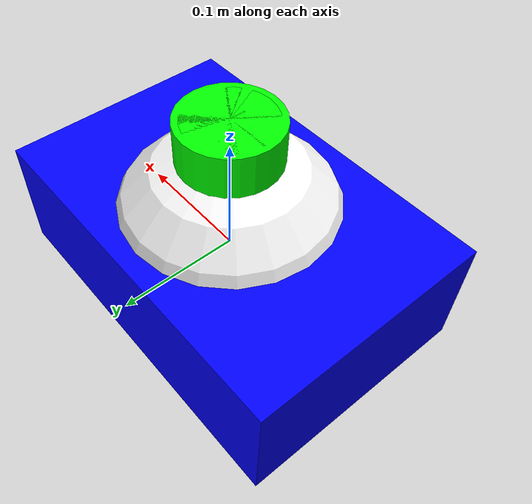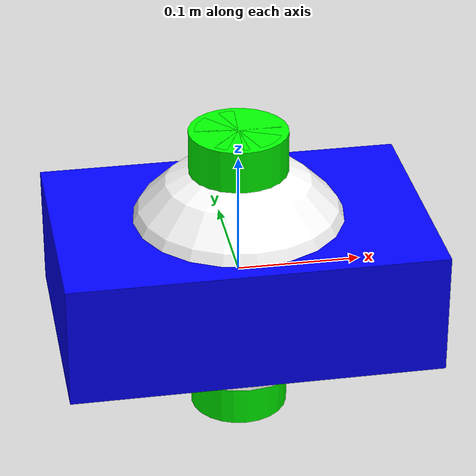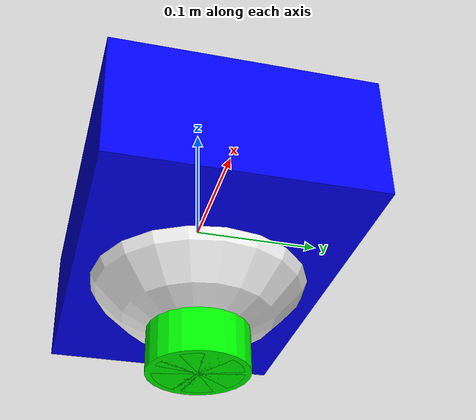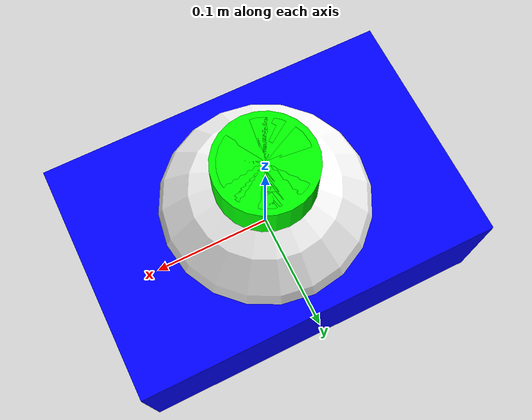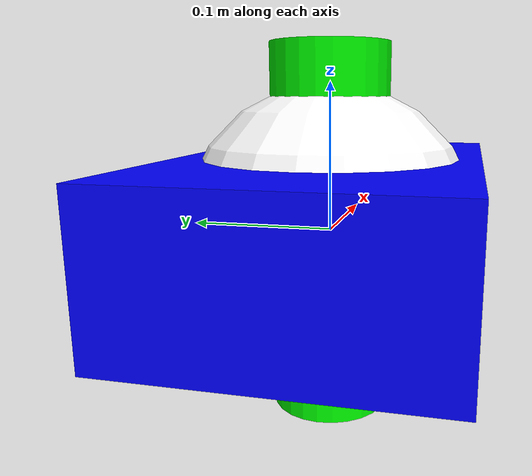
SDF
<?xml version="1.0" ?>
<sdf version="1.7">
  <model name="simple_humanoid">
    <!-- Base Link -->
    <link name="base_link">
      <visual name="base_visual">
        <geometry>
          <box>
            <size>0.3 0.2 0.1</size>
          </box>
        </geometry>
        <material>
          <ambient>0 0 1 1</ambient>
          <diffuse>0 0 1 1</diffuse>
        </material>
      </visual>
      <collision name="base_collision">
        <geometry>
          <box>
            <size>0.3 0.2 0.1</size>
          </box>
        </geometry>
      </collision>
      <inertial>
        <mass>5.0</mass>
        <inertia>
          <ixx>0.1</ixx>
          <ixy>0.0</ixy>
          <ixz>0.0</ixz>
          <iyy>0.1</iyy>
          <iyz>0.0</iyz>
          <izz>0.1</izz>
        </inertia>
      </inertial>
    </link>

    <!-- Head -->
    <link name="head">
      <visual name="head_visual">
        <geometry>
          <sphere>
            <radius>0.1</radius>
          </sphere>
        </geometry>
        <material>
          <ambient>1 1 1 1</ambient>
          <diffuse>1 1 1 1</diffuse>
        </material>
      </visual>
      <collision name="head_collision">
        <geometry>
          <sphere>
            <radius>0.1</radius>
          </sphere>
        </geometry>
      </collision>
      <inertial>
        <mass>1.0</mass>
        <inertia>
          <ixx>0.001</ixx>
          <ixy>0.0</ixy>
          <ixz>0.0</ixz>
          <iyy>0.001</iyy>
          <iyz>0.0</iyz>
          <izz>0.001</izz>
        </inertia>
      </inertial>
    </link>

    <joint name="head_joint" type="fixed">
      <parent>base_link</parent>
      <child>head</child>
      <pose>0 0 0.15 0 0 0</pose>
    </joint>

    <!-- Left Arm -->
    <link name="left_upper_arm">
      <visual name="left_upper_arm_visual">
        <geometry>
          <cylinder>
            <length>0.2</length>
            <radius>0.03</radius>
          </cylinder>
        </geometry>
        <material>
          <ambient>1 0 0 1</ambient>
          <diffuse>1 0 0 1</diffuse>
        </material>
      </visual>
      <collision name="left_upper_arm_collision">
        <geometry>
          <cylinder>
            <length>0.2</length>
            <radius>0.03</radius>
          </cylinder>
        </geometry>
      </collision>
      <inertial>
        <mass>0.5</mass>
        <inertia>
          <ixx>0.001</ixx>
          <ixy>0.0</ixy>
          <ixz>0.0</ixz>
          <iyy>0.001</iyy>
          <iyz>0.0</iyz>
          <izz>0.001</izz>
        </inertia>
      </inertial>
    </link>

    <joint name="left_shoulder_joint" type="revolute">
      <parent>base_link</parent>
      <child>left_upper_arm</child>
      <pose>0.18 0.1 0 0 0 0</pose>
      <axis>
        <xyz>0 1 0</xyz>
        <limit>
          <lower>-1.57</lower>
          <upper>1.57</upper>
        </limit>
      </axis>
    </joint>

    <link name="left_lower_arm">
      <visual name="left_lower_arm_visual">
        <geometry>
          <cylinder>
            <length>0.15</length>
            <radius>0.025</radius>
          </cylinder>
        </geometry>
        <material>
          <ambient>1 0 0 1</ambient>
          <diffuse>1 0 0 1</diffuse>
        </material>
      </visual>
      <collision name="left_lower_arm_collision">
        <geometry>
          <cylinder>
            <length>0.15</length>
            <radius>0.025</radius>
          </cylinder>
        </geometry>
      </collision>
      <inertial>
        <mass>0.3</mass>
        <inertia>
          <ixx>0.001</ixx>
          <ixy>0.0</ixy>
          <ixz>0.0</ixz>
          <iyy>0.001</iyy>
          <iyz>0.0</iyz>
          <izz>0.001</izz>
        </inertia>
      </inertial>
    </link>

    <joint name="left_elbow_joint" type="revolute">
      <parent>left_upper_arm</parent>
      <child>left_lower_arm</child>
      <pose>0 0 -0.175 0 0 0</pose>
      <axis>
        <xyz>0 1 0</xyz>
        <limit>
          <lower>-1.57</lower>
          <upper>1.57</upper>
        </limit>
      </axis>
    </joint>

    <!-- Right Arm -->
    <link name="right_upper_arm">
      <visual name="right_upper_arm_visual">
        <geometry>
          <cylinder>
            <length>0.2</length>
            <radius>0.03</radius>
          </cylinder>
        </geometry>
        <material>
          <ambient>1 0 0 1</ambient>
          <diffuse>1 0 0 1</diffuse>
        </material>
      </visual>
      <collision name="right_upper_arm_collision">
        <geometry>
          <cylinder>
            <length>0.2</length>
            <radius>0.03</radius>
          </cylinder>
        </geometry>
      </collision>
      <inertial>
        <mass>0.5</mass>
        <inertia>
          <ixx>0.001</ixx>
          <ixy>0.0</ixy>
          <ixz>0.0</ixz>
          <iyy>0.001</iyy>
          <iyz>0.0</iyz>
          <izz>0.001</izz>
        </inertia>
      </inertial>
    </link>

    <joint name="right_shoulder_joint" type="revolute">
      <parent>base_link</parent>
      <child>right_upper_arm</child>
      <pose>0.18 -0.1 0 0 0 0</pose>
      <axis>
        <xyz>0 1 0</xyz>
        <limit>
          <lower>-1.57</lower>
          <upper>1.57</upper>
        </limit>
      </axis>
    </joint>

    <link name="right_lower_arm">
      <visual name="right_lower_arm_visual">
        <geometry>
          <cylinder>
            <length>0.15</length>
            <radius>0.025</radius>
          </cylinder>
        </geometry>
        <material>
          <ambient>1 0 0 1</ambient>
          <diffuse>1 0 0 1</diffuse>
        </material>
      </visual>
      <collision name="right_lower_arm_collision">
        <geometry>
          <cylinder>
            <length>0.15</length>
            <radius>0.025</radius>
          </cylinder>
        </geometry>
      </collision>
      <inertial>
        <mass>0.3</mass>
        <inertia>
          <ixx>0.001</ixx>
          <ixy>0.0</ixy>
          <ixz>0.0</ixz>
          <iyy>0.001</iyy>
          <iyz>0.0</iyz>
          <izz>0.001</izz>
        </inertia>
      </inertial>
    </link>

    <joint name="right_elbow_joint" type="revolute">
      <parent>right_upper_arm</parent>
      <child>right_lower_arm</child>
      <pose>0 0 -0.175 0 0 0</pose>
      <axis>
        <xyz>0 1 0</xyz>
        <limit>
          <lower>-1.57</lower>
          <upper>1.57</upper>
        </limit>
      </axis>
    </joint>

    <!-- Left Leg -->
    <link name="left_upper_leg">
      <visual name="left_upper_leg_visual">
        <geometry>
          <cylinder>
            <length>0.25</length>
            <radius>0.04</radius>
          </cylinder>
        </geometry>
        <material>
          <ambient>0 1 0 1</ambient>
          <diffuse>0 1 0 1</diffuse>
        </material>
      </visual>
      <collision name="left_upper_leg_collision">
        <geometry>
          <cylinder>
            <length>0.25</length>
            <radius>0.04</radius>
          </cylinder>
        </geometry>
      </collision>
      <inertial>
        <mass>0.8</mass>
        <inertia>
          <ixx>0.002</ixx>
          <ixy>0.0</ixy>
          <ixz>0.0</ixz>
          <iyy>0.002</iyy>
          <iyz>0.0</iyz>
          <izz>0.002</izz>
        </inertia>
      </inertial>
    </link>

    <joint name="left_hip_joint" type="revolute">
      <parent>base_link</parent>
      <child>left_upper_leg</child>
      <pose>-0.1 -0.05 -0.05 0 0 0</pose>
      <axis>
        <xyz>0 1 0</xyz>
        <limit>
          <lower>-1.57</lower>
          <upper>1.57</upper>
        </limit>
      </axis>
    </joint>

    <link name="left_lower_leg">
      <visual name="left_lower_leg_visual">
        <geometry>
          <cylinder>
            <length>0.25</length>
            <radius>0.035</radius>
          </cylinder>
        </geometry>
        <material>
          <ambient>0 1 0 1</ambient>
          <diffuse>0 1 0 1</diffuse>
        </material>
      </visual>
      <collision name="left_lower_leg_collision">
        <geometry>
          <cylinder>
            <length>0.25</length>
            <radius>0.035</radius>
          </cylinder>
        </geometry>
      </collision>
      <inertial>
        <mass>0.6</mass>
        <inertia>
          <ixx>0.002</ixx>
          <ixy>0.0</ixy>
          <ixz>0.0</ixz>
          <iyy>0.002</iyy>
          <iyz>0.0</iyz>
          <izz>0.002</izz>
        </inertia>
      </inertial>
    </link>

    <joint name="left_knee_joint" type="revolute">
      <parent>left_upper_leg</parent>
      <child>left_lower_leg</child>
      <pose>0 0 -0.2 0 0 0</pose>
      <axis>
        <xyz>0 1 0</xyz>
        <limit>
          <lower>-1.57</lower>
          <upper>1.57</upper>
        </limit>
      </axis>
    </joint>

    <!-- Right Leg -->
    <link name="right_upper_leg">
      <visual name="right_upper_leg_visual">
        <geometry>
          <cylinder>
            <length>0.25</length>
            <radius>0.04</radius>
          </cylinder>
        </geometry>
        <material>
          <ambient>0 1 0 1</ambient>
          <diffuse>0 1 0 1</diffuse>
        </material>
      </visual>
      <collision name="right_upper_leg_collision">
        <geometry>
          <cylinder>
            <length>0.25</length>
            <radius>0.04</radius>
          </cylinder>
        </geometry>
      </collision>
      <inertial>
        <mass>0.8</mass>
        <inertia>
          <ixx>0.002</ixx>
          <ixy>0.0</ixy>
          <ixz>0.0</ixz>
          <iyy>0.002</iyy>
          <iyz>0.0</iyz>
          <izz>0.002</izz>
        </inertia>
      </inertial>
    </link>

    <joint name="right_hip_joint" type="revolute">
      <parent>base_link</parent>
      <child>right_upper_leg</child>
      <pose>-0.1 0.05 -0.05 0 0 0</pose>
      <axis>
        <xyz>0 1 0</xyz>
        <limit>
          <lower>-1.57</lower>
          <upper>1.57</upper>
        </limit>
      </axis>
    </joint>

    <link name="right_lower_leg">
      <visual name="right_lower_leg_visual">
        <geometry>
          <cylinder>
            <length>0.25</length>
            <radius>0.035</radius>
          </cylinder>
        </geometry>
        <material>
          <ambient>0 1 0 1</ambient>
          <diffuse>0 1 0 1</diffuse>
        </material>
      </visual>
      <collision name="right_lower_leg_collision">
        <geometry>
          <cylinder>
            <length>0.25</length>
            <radius>0.035</radius>
          </cylinder>
        </geometry>
      </collision>
      <inertial>
        <mass>0.6</mass>
        <inertia>
          <ixx>0.002</ixx>
          <ixy>0.0</ixy>
          <ixz>0.0</ixz>
          <iyy>0.002</iyy>
          <iyz>0.0</iyz>
          <izz>0.002</izz>
        </inertia>
      </inertial>
    </link>

    <joint name="right_knee_joint" type="revolute">
      <parent>right_upper_leg</parent>
      <child>right_lower_leg</child>
      <pose>0 0 -0.2 0 0 0</pose>
      <axis>
        <xyz>0 1 0</xyz>
        <limit>
          <lower>-1.57</lower>
          <upper>1.57</upper>
        </limit>
      </axis>
    </joint>

  </model>
</sdf>
